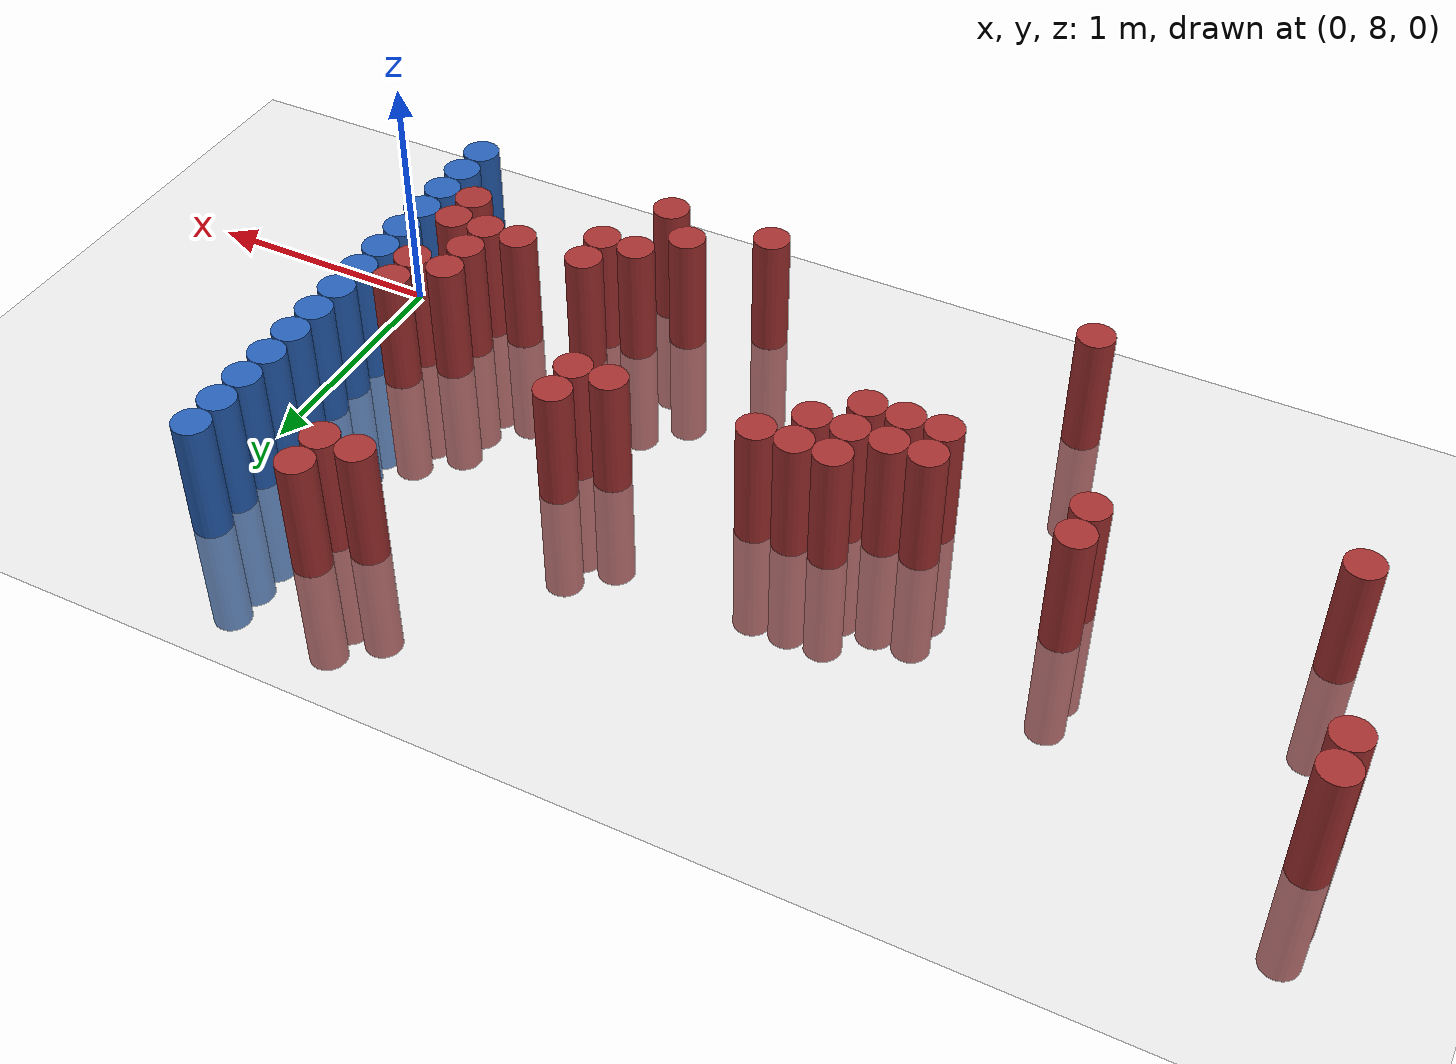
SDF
<sdf version="1.6">
 <world name="default">
  <model name="ground_plane">
   <static>1</static>
   <link name="link">
    <collision name="collision">
     <geometry><plane><normal>0 0 1</normal><size>100 100</size></plane></geometry>
     <surface><friction><ode><mu>100</mu><mu2>50</mu2></ode></friction></surface>
    </collision>
    <visual name="visual">
     <cast_shadows>0</cast_shadows>
     <geometry><plane><normal>0 0 1</normal><size>100 100</size></plane></geometry>
     <material>
      <script><uri>file://media/materials/scripts/gazebo.material</uri><name>Gazebo/Grey</name></script>
     </material>
    </visual>
   </link>
  </model>
  <model name="unit_cylinder_146">
   <static>1</static>
   <pose>-4.125000 9.075000 0.000000 0.000000 0.000000 0.000000</pose>
   <link name="link">
    <inertial>
     <mass>1</mass>
     <inertia><ixx>0.145833</ixx><ixy>0</ixy><ixz>0</ixz><iyy>0.145833</iyy><iyz>0</iyz><izz>0.125</izz></inertia>
    </inertial>
    <collision name="collision">
     <geometry><cylinder><radius>0.075000</radius><length>1</length></cylinder></geometry>
    </collision>
    <visual name="visual">
     <geometry><cylinder><radius>0.075000</radius><length>1</length></cylinder></geometry>
     <material>
      <ambient>0.648000 0.192000 0.192000 1</ambient>
      <diffuse>0.648000 0.192000 0.192000 1</diffuse>
     </material>
     <material>
      <script><name>Gazebo/Grey</name><uri>file://media/materials/scripts/gazebo.material</uri></script>
     </material>
    </visual>
   </link>
  </model>
  <model name="unit_cylinder_147">
   <static>1</static>
   <pose>-4.125000 9.225000 0.000000 0.000000 0.000000 0.000000</pose>
   <link name="link">
    <inertial>
     <mass>1</mass>
     <inertia><ixx>0.145833</ixx><ixy>0</ixy><ixz>0</ixz><iyy>0.145833</iyy><iyz>0</iyz><izz>0.125</izz></inertia>
    </inertial>
    <collision name="collision">
     <geometry><cylinder><radius>0.075000</radius><length>1</length></cylinder></geometry>
    </collision>
    <visual name="visual">
     <geometry><cylinder><radius>0.075000</radius><length>1</length></cylinder></geometry>
     <material>
      <ambient>0.648000 0.192000 0.192000 1</ambient>
      <diffuse>0.648000 0.192000 0.192000 1</diffuse>
     </material>
     <material>
      <script><name>Gazebo/Grey</name><uri>file://media/materials/scripts/gazebo.material</uri></script>
     </material>
    </visual>
   </link>
  </model>
  <model name="unit_cylinder_149">
   <static>1</static>
   <pose>-3.975000 8.325000 0.000000 0.000000 0.000000 0.000000</pose>
   <link name="link">
    <inertial>
     <mass>1</mass>
     <inertia><ixx>0.145833</ixx><ixy>0</ixy><ixz>0</ixz><iyy>0.145833</iyy><iyz>0</iyz><izz>0.125</izz></inertia>
    </inertial>
    <collision name="collision">
     <geometry><cylinder><radius>0.075000</radius><length>1</length></cylinder></geometry>
    </collision>
    <visual name="visual">
     <geometry><cylinder><radius>0.075000</radius><length>1</length></cylinder></geometry>
     <material>
      <ambient>0.648000 0.192000 0.192000 1</ambient>
      <diffuse>0.648000 0.192000 0.192000 1</diffuse>
     </material>
     <material>
      <script><name>Gazebo/Grey</name><uri>file://media/materials/scripts/gazebo.material</uri></script>
     </material>
    </visual>
   </link>
  </model>
  <model name="unit_cylinder_161">
   <static>1</static>
   <pose>-3.075000 8.475000 0.000000 0.000000 0.000000 0.000000</pose>
   <link name="link">
    <inertial>
     <mass>1</mass>
     <inertia><ixx>0.145833</ixx><ixy>0</ixy><ixz>0</ixz><iyy>0.145833</iyy><iyz>0</iyz><izz>0.125</izz></inertia>
    </inertial>
    <collision name="collision">
     <geometry><cylinder><radius>0.075000</radius><length>1</length></cylinder></geometry>
    </collision>
    <visual name="visual">
     <geometry><cylinder><radius>0.075000</radius><length>1</length></cylinder></geometry>
     <material>
      <ambient>0.648000 0.192000 0.192000 1</ambient>
      <diffuse>0.648000 0.192000 0.192000 1</diffuse>
     </material>
     <material>
      <script><name>Gazebo/Grey</name><uri>file://media/materials/scripts/gazebo.material</uri></script>
     </material>
    </visual>
   </link>
  </model>
  <model name="unit_cylinder_162">
   <static>1</static>
   <pose>-3.075000 8.625000 0.000000 0.000000 0.000000 0.000000</pose>
   <link name="link">
    <inertial>
     <mass>1</mass>
     <inertia><ixx>0.145833</ixx><ixy>0</ixy><ixz>0</ixz><iyy>0.145833</iyy><iyz>0</iyz><izz>0.125</izz></inertia>
    </inertial>
    <collision name="collision">
     <geometry><cylinder><radius>0.075000</radius><length>1</length></cylinder></geometry>
    </collision>
    <visual name="visual">
     <geometry><cylinder><radius>0.075000</radius><length>1</length></cylinder></geometry>
     <material>
      <ambient>0.648000 0.192000 0.192000 1</ambient>
      <diffuse>0.648000 0.192000 0.192000 1</diffuse>
     </material>
     <material>
      <script><name>Gazebo/Grey</name><uri>file://media/materials/scripts/gazebo.material</uri></script>
     </material>
    </visual>
   </link>
  </model>
  <model name="unit_cylinder_164">
   <static>1</static>
   <pose>-2.775000 7.575000 0.000000 0.000000 0.000000 0.000000</pose>
   <link name="link">
    <inertial>
     <mass>1</mass>
     <inertia><ixx>0.145833</ixx><ixy>0</ixy><ixz>0</ixz><iyy>0.145833</iyy><iyz>0</iyz><izz>0.125</izz></inertia>
    </inertial>
    <collision name="collision">
     <geometry><cylinder><radius>0.075000</radius><length>1</length></cylinder></geometry>
    </collision>
    <visual name="visual">
     <geometry><cylinder><radius>0.075000</radius><length>1</length></cylinder></geometry>
     <material>
      <ambient>0.648000 0.192000 0.192000 1</ambient>
      <diffuse>0.648000 0.192000 0.192000 1</diffuse>
     </material>
     <material>
      <script><name>Gazebo/Grey</name><uri>file://media/materials/scripts/gazebo.material</uri></script>
     </material>
    </visual>
   </link>
  </model>
  <model name="unit_cylinder_167">
   <static>1</static>
   <pose>-2.475000 8.325000 0.000000 0.000000 0.000000 0.000000</pose>
   <link name="link">
    <inertial>
     <mass>1</mass>
     <inertia><ixx>0.145833</ixx><ixy>0</ixy><ixz>0</ixz><iyy>0.145833</iyy><iyz>0</iyz><izz>0.125</izz></inertia>
    </inertial>
    <collision name="collision">
     <geometry><cylinder><radius>0.075000</radius><length>1</length></cylinder></geometry>
    </collision>
    <visual name="visual">
     <geometry><cylinder><radius>0.075000</radius><length>1</length></cylinder></geometry>
     <material>
      <ambient>0.648000 0.192000 0.192000 1</ambient>
      <diffuse>0.648000 0.192000 0.192000 1</diffuse>
     </material>
     <material>
      <script><name>Gazebo/Grey</name><uri>file://media/materials/scripts/gazebo.material</uri></script>
     </material>
    </visual>
   </link>
  </model>
  <model name="unit_cylinder_168">
   <static>1</static>
   <pose>-2.475000 8.475000 0.000000 0.000000 0.000000 0.000000</pose>
   <link name="link">
    <inertial>
     <mass>1</mass>
     <inertia><ixx>0.145833</ixx><ixy>0</ixy><ixz>0</ixz><iyy>0.145833</iyy><iyz>0</iyz><izz>0.125</izz></inertia>
    </inertial>
    <collision name="collision">
     <geometry><cylinder><radius>0.075000</radius><length>1</length></cylinder></geometry>
    </collision>
    <visual name="visual">
     <geometry><cylinder><radius>0.075000</radius><length>1</length></cylinder></geometry>
     <material>
      <ambient>0.648000 0.192000 0.192000 1</ambient>
      <diffuse>0.648000 0.192000 0.192000 1</diffuse>
     </material>
     <material>
      <script><name>Gazebo/Grey</name><uri>file://media/materials/scripts/gazebo.material</uri></script>
     </material>
    </visual>
   </link>
  </model>
  <model name="unit_cylinder_169">
   <static>1</static>
   <pose>-2.325000 8.325000 0.000000 0.000000 0.000000 0.000000</pose>
   <link name="link">
    <inertial>
     <mass>1</mass>
     <inertia><ixx>0.145833</ixx><ixy>0</ixy><ixz>0</ixz><iyy>0.145833</iyy><iyz>0</iyz><izz>0.125</izz></inertia>
    </inertial>
    <collision name="collision">
     <geometry><cylinder><radius>0.075000</radius><length>1</length></cylinder></geometry>
    </collision>
    <visual name="visual">
     <geometry><cylinder><radius>0.075000</radius><length>1</length></cylinder></geometry>
     <material>
      <ambient>0.648000 0.192000 0.192000 1</ambient>
      <diffuse>0.648000 0.192000 0.192000 1</diffuse>
     </material>
     <material>
      <script><name>Gazebo/Grey</name><uri>file://media/materials/scripts/gazebo.material</uri></script>
     </material>
    </visual>
   </link>
  </model>
  <model name="unit_cylinder_170">
   <static>1</static>
   <pose>-2.325000 8.475000 0.000000 0.000000 0.000000 0.000000</pose>
   <link name="link">
    <inertial>
     <mass>1</mass>
     <inertia><ixx>0.145833</ixx><ixy>0</ixy><ixz>0</ixz><iyy>0.145833</iyy><iyz>0</iyz><izz>0.125</izz></inertia>
    </inertial>
    <collision name="collision">
     <geometry><cylinder><radius>0.075000</radius><length>1</length></cylinder></geometry>
    </collision>
    <visual name="visual">
     <geometry><cylinder><radius>0.075000</radius><length>1</length></cylinder></geometry>
     <material>
      <ambient>0.648000 0.192000 0.192000 1</ambient>
      <diffuse>0.648000 0.192000 0.192000 1</diffuse>
     </material>
     <material>
      <script><name>Gazebo/Grey</name><uri>file://media/materials/scripts/gazebo.material</uri></script>
     </material>
    </visual>
   </link>
  </model>
  <model name="unit_cylinder_171">
   <static>1</static>
   <pose>-2.175000 8.325000 0.000000 0.000000 0.000000 0.000000</pose>
   <link name="link">
    <inertial>
     <mass>1</mass>
     <inertia><ixx>0.145833</ixx><ixy>0</ixy><ixz>0</ixz><iyy>0.145833</iyy><iyz>0</iyz><izz>0.125</izz></inertia>
    </inertial>
    <collision name="collision">
     <geometry><cylinder><radius>0.075000</radius><length>1</length></cylinder></geometry>
    </collision>
    <visual name="visual">
     <geometry><cylinder><radius>0.075000</radius><length>1</length></cylinder></geometry>
     <material>
      <ambient>0.648000 0.192000 0.192000 1</ambient>
      <diffuse>0.648000 0.192000 0.192000 1</diffuse>
     </material>
     <material>
      <script><name>Gazebo/Grey</name><uri>file://media/materials/scripts/gazebo.material</uri></script>
     </material>
    </visual>
   </link>
  </model>
  <model name="unit_cylinder_172">
   <static>1</static>
   <pose>-2.175000 8.475000 0.000000 0.000000 0.000000 0.000000</pose>
   <link name="link">
    <inertial>
     <mass>1</mass>
     <inertia><ixx>0.145833</ixx><ixy>0</ixy><ixz>0</ixz><iyy>0.145833</iyy><iyz>0</iyz><izz>0.125</izz></inertia>
    </inertial>
    <collision name="collision">
     <geometry><cylinder><radius>0.075000</radius><length>1</length></cylinder></geometry>
    </collision>
    <visual name="visual">
     <geometry><cylinder><radius>0.075000</radius><length>1</length></cylinder></geometry>
     <material>
      <ambient>0.648000 0.192000 0.192000 1</ambient>
      <diffuse>0.648000 0.192000 0.192000 1</diffuse>
     </material>
     <material>
      <script><name>Gazebo/Grey</name><uri>file://media/materials/scripts/gazebo.material</uri></script>
     </material>
    </visual>
   </link>
  </model>
  <model name="unit_cylinder_173">
   <static>1</static>
   <pose>-2.175000 8.625000 0.000000 0.000000 0.000000 0.000000</pose>
   <link name="link">
    <inertial>
     <mass>1</mass>
     <inertia><ixx>0.145833</ixx><ixy>0</ixy><ixz>0</ixz><iyy>0.145833</iyy><iyz>0</iyz><izz>0.125</izz></inertia>
    </inertial>
    <collision name="collision">
     <geometry><cylinder><radius>0.075000</radius><length>1</length></cylinder></geometry>
    </collision>
    <visual name="visual">
     <geometry><cylinder><radius>0.075000</radius><length>1</length></cylinder></geometry>
     <material>
      <ambient>0.648000 0.192000 0.192000 1</ambient>
      <diffuse>0.648000 0.192000 0.192000 1</diffuse>
     </material>
     <material>
      <script><name>Gazebo/Grey</name><uri>file://media/materials/scripts/gazebo.material</uri></script>
     </material>
    </visual>
   </link>
  </model>
  <model name="unit_cylinder_176">
   <static>1</static>
   <pose>-2.025000 8.475000 0.000000 0.000000 0.000000 0.000000</pose>
   <link name="link">
    <inertial>
     <mass>1</mass>
     <inertia><ixx>0.145833</ixx><ixy>0</ixy><ixz>0</ixz><iyy>0.145833</iyy><iyz>0</iyz><izz>0.125</izz></inertia>
    </inertial>
    <collision name="collision">
     <geometry><cylinder><radius>0.075000</radius><length>1</length></cylinder></geometry>
    </collision>
    <visual name="visual">
     <geometry><cylinder><radius>0.075000</radius><length>1</length></cylinder></geometry>
     <material>
      <ambient>0.648000 0.192000 0.192000 1</ambient>
      <diffuse>0.648000 0.192000 0.192000 1</diffuse>
     </material>
     <material>
      <script><name>Gazebo/Grey</name><uri>file://media/materials/scripts/gazebo.material</uri></script>
     </material>
    </visual>
   </link>
  </model>
  <model name="unit_cylinder_177">
   <static>1</static>
   <pose>-2.025000 8.625000 0.000000 0.000000 0.000000 0.000000</pose>
   <link name="link">
    <inertial>
     <mass>1</mass>
     <inertia><ixx>0.145833</ixx><ixy>0</ixy><ixz>0</ixz><iyy>0.145833</iyy><iyz>0</iyz><izz>0.125</izz></inertia>
    </inertial>
    <collision name="collision">
     <geometry><cylinder><radius>0.075000</radius><length>1</length></cylinder></geometry>
    </collision>
    <visual name="visual">
     <geometry><cylinder><radius>0.075000</radius><length>1</length></cylinder></geometry>
     <material>
      <ambient>0.648000 0.192000 0.192000 1</ambient>
      <diffuse>0.648000 0.192000 0.192000 1</diffuse>
     </material>
     <material>
      <script><name>Gazebo/Grey</name><uri>file://media/materials/scripts/gazebo.material</uri></script>
     </material>
    </visual>
   </link>
  </model>
  <model name="unit_cylinder_180">
   <static>1</static>
   <pose>-1.875000 8.625000 0.000000 0.000000 0.000000 0.000000</pose>
   <link name="link">
    <inertial>
     <mass>1</mass>
     <inertia><ixx>0.145833</ixx><ixy>0</ixy><ixz>0</ixz><iyy>0.145833</iyy><iyz>0</iyz><izz>0.125</izz></inertia>
    </inertial>
    <collision name="collision">
     <geometry><cylinder><radius>0.075000</radius><length>1</length></cylinder></geometry>
    </collision>
    <visual name="visual">
     <geometry><cylinder><radius>0.075000</radius><length>1</length></cylinder></geometry>
     <material>
      <ambient>0.648000 0.192000 0.192000 1</ambient>
      <diffuse>0.648000 0.192000 0.192000 1</diffuse>
     </material>
     <material>
      <script><name>Gazebo/Grey</name><uri>file://media/materials/scripts/gazebo.material</uri></script>
     </material>
    </visual>
   </link>
  </model>
  <model name="unit_cylinder_186">
   <static>1</static>
   <pose>-1.425000 7.575000 0.000000 0.000000 0.000000 0.000000</pose>
   <link name="link">
    <inertial>
     <mass>1</mass>
     <inertia><ixx>0.145833</ixx><ixy>0</ixy><ixz>0</ixz><iyy>0.145833</iyy><iyz>0</iyz><izz>0.125</izz></inertia>
    </inertial>
    <collision name="collision">
     <geometry><cylinder><radius>0.075000</radius><length>1</length></cylinder></geometry>
    </collision>
    <visual name="visual">
     <geometry><cylinder><radius>0.075000</radius><length>1</length></cylinder></geometry>
     <material>
      <ambient>0.648000 0.192000 0.192000 1</ambient>
      <diffuse>0.648000 0.192000 0.192000 1</diffuse>
     </material>
     <material>
      <script><name>Gazebo/Grey</name><uri>file://media/materials/scripts/gazebo.material</uri></script>
     </material>
    </visual>
   </link>
  </model>
  <model name="unit_cylinder_187">
   <static>1</static>
   <pose>-1.275000 8.625000 0.000000 0.000000 0.000000 0.000000</pose>
   <link name="link">
    <inertial>
     <mass>1</mass>
     <inertia><ixx>0.145833</ixx><ixy>0</ixy><ixz>0</ixz><iyy>0.145833</iyy><iyz>0</iyz><izz>0.125</izz></inertia>
    </inertial>
    <collision name="collision">
     <geometry><cylinder><radius>0.075000</radius><length>1</length></cylinder></geometry>
    </collision>
    <visual name="visual">
     <geometry><cylinder><radius>0.075000</radius><length>1</length></cylinder></geometry>
     <material>
      <ambient>0.648000 0.192000 0.192000 1</ambient>
      <diffuse>0.648000 0.192000 0.192000 1</diffuse>
     </material>
     <material>
      <script><name>Gazebo/Grey</name><uri>file://media/materials/scripts/gazebo.material</uri></script>
     </material>
    </visual>
   </link>
  </model>
  <model name="unit_cylinder_188">
   <static>1</static>
   <pose>-1.125000 7.725000 0.000000 0.000000 0.000000 0.000000</pose>
   <link name="link">
    <inertial>
     <mass>1</mass>
     <inertia><ixx>0.145833</ixx><ixy>0</ixy><ixz>0</ixz><iyy>0.145833</iyy><iyz>0</iyz><izz>0.125</izz></inertia>
    </inertial>
    <collision name="collision">
     <geometry><cylinder><radius>0.075000</radius><length>1</length></cylinder></geometry>
    </collision>
    <visual name="visual">
     <geometry><cylinder><radius>0.075000</radius><length>1</length></cylinder></geometry>
     <material>
      <ambient>0.648000 0.192000 0.192000 1</ambient>
      <diffuse>0.648000 0.192000 0.192000 1</diffuse>
     </material>
     <material>
      <script><name>Gazebo/Grey</name><uri>file://media/materials/scripts/gazebo.material</uri></script>
     </material>
    </visual>
   </link>
  </model>
  <model name="unit_cylinder_189">
   <static>1</static>
   <pose>-1.125000 8.625000 0.000000 0.000000 0.000000 0.000000</pose>
   <link name="link">
    <inertial>
     <mass>1</mass>
     <inertia><ixx>0.145833</ixx><ixy>0</ixy><ixz>0</ixz><iyy>0.145833</iyy><iyz>0</iyz><izz>0.125</izz></inertia>
    </inertial>
    <collision name="collision">
     <geometry><cylinder><radius>0.075000</radius><length>1</length></cylinder></geometry>
    </collision>
    <visual name="visual">
     <geometry><cylinder><radius>0.075000</radius><length>1</length></cylinder></geometry>
     <material>
      <ambient>0.648000 0.192000 0.192000 1</ambient>
      <diffuse>0.648000 0.192000 0.192000 1</diffuse>
     </material>
     <material>
      <script><name>Gazebo/Grey</name><uri>file://media/materials/scripts/gazebo.material</uri></script>
     </material>
    </visual>
   </link>
  </model>
  <model name="unit_cylinder_190">
   <static>1</static>
   <pose>-1.125000 8.775000 0.000000 0.000000 0.000000 0.000000</pose>
   <link name="link">
    <inertial>
     <mass>1</mass>
     <inertia><ixx>0.145833</ixx><ixy>0</ixy><ixz>0</ixz><iyy>0.145833</iyy><iyz>0</iyz><izz>0.125</izz></inertia>
    </inertial>
    <collision name="collision">
     <geometry><cylinder><radius>0.075000</radius><length>1</length></cylinder></geometry>
    </collision>
    <visual name="visual">
     <geometry><cylinder><radius>0.075000</radius><length>1</length></cylinder></geometry>
     <material>
      <ambient>0.648000 0.192000 0.192000 1</ambient>
      <diffuse>0.648000 0.192000 0.192000 1</diffuse>
     </material>
     <material>
      <script><name>Gazebo/Grey</name><uri>file://media/materials/scripts/gazebo.material</uri></script>
     </material>
    </visual>
   </link>
  </model>
  <model name="unit_cylinder_191">
   <static>1</static>
   <pose>-0.975000 7.575000 0.000000 0.000000 0.000000 0.000000</pose>
   <link name="link">
    <inertial>
     <mass>1</mass>
     <inertia><ixx>0.145833</ixx><ixy>0</ixy><ixz>0</ixz><iyy>0.145833</iyy><iyz>0</iyz><izz>0.125</izz></inertia>
    </inertial>
    <collision name="collision">
     <geometry><cylinder><radius>0.075000</radius><length>1</length></cylinder></geometry>
    </collision>
    <visual name="visual">
     <geometry><cylinder><radius>0.075000</radius><length>1</length></cylinder></geometry>
     <material>
      <ambient>0.648000 0.192000 0.192000 1</ambient>
      <diffuse>0.648000 0.192000 0.192000 1</diffuse>
     </material>
     <material>
      <script><name>Gazebo/Grey</name><uri>file://media/materials/scripts/gazebo.material</uri></script>
     </material>
    </visual>
   </link>
  </model>
  <model name="unit_cylinder_192">
   <static>1</static>
   <pose>-0.975000 7.875000 0.000000 0.000000 0.000000 0.000000</pose>
   <link name="link">
    <inertial>
     <mass>1</mass>
     <inertia><ixx>0.145833</ixx><ixy>0</ixy><ixz>0</ixz><iyy>0.145833</iyy><iyz>0</iyz><izz>0.125</izz></inertia>
    </inertial>
    <collision name="collision">
     <geometry><cylinder><radius>0.075000</radius><length>1</length></cylinder></geometry>
    </collision>
    <visual name="visual">
     <geometry><cylinder><radius>0.075000</radius><length>1</length></cylinder></geometry>
     <material>
      <ambient>0.648000 0.192000 0.192000 1</ambient>
      <diffuse>0.648000 0.192000 0.192000 1</diffuse>
     </material>
     <material>
      <script><name>Gazebo/Grey</name><uri>file://media/materials/scripts/gazebo.material</uri></script>
     </material>
    </visual>
   </link>
  </model>
  <model name="unit_cylinder_194">
   <static>1</static>
   <pose>-0.825000 7.875000 0.000000 0.000000 0.000000 0.000000</pose>
   <link name="link">
    <inertial>
     <mass>1</mass>
     <inertia><ixx>0.145833</ixx><ixy>0</ixy><ixz>0</ixz><iyy>0.145833</iyy><iyz>0</iyz><izz>0.125</izz></inertia>
    </inertial>
    <collision name="collision">
     <geometry><cylinder><radius>0.075000</radius><length>1</length></cylinder></geometry>
    </collision>
    <visual name="visual">
     <geometry><cylinder><radius>0.075000</radius><length>1</length></cylinder></geometry>
     <material>
      <ambient>0.648000 0.192000 0.192000 1</ambient>
      <diffuse>0.648000 0.192000 0.192000 1</diffuse>
     </material>
     <material>
      <script><name>Gazebo/Grey</name><uri>file://media/materials/scripts/gazebo.material</uri></script>
     </material>
    </visual>
   </link>
  </model>
  <model name="unit_cylinder_195">
   <static>1</static>
   <pose>-0.825000 8.025000 0.000000 0.000000 0.000000 0.000000</pose>
   <link name="link">
    <inertial>
     <mass>1</mass>
     <inertia><ixx>0.145833</ixx><ixy>0</ixy><ixz>0</ixz><iyy>0.145833</iyy><iyz>0</iyz><izz>0.125</izz></inertia>
    </inertial>
    <collision name="collision">
     <geometry><cylinder><radius>0.075000</radius><length>1</length></cylinder></geometry>
    </collision>
    <visual name="visual">
     <geometry><cylinder><radius>0.075000</radius><length>1</length></cylinder></geometry>
     <material>
      <ambient>0.648000 0.192000 0.192000 1</ambient>
      <diffuse>0.648000 0.192000 0.192000 1</diffuse>
     </material>
     <material>
      <script><name>Gazebo/Grey</name><uri>file://media/materials/scripts/gazebo.material</uri></script>
     </material>
    </visual>
   </link>
  </model>
  <model name="unit_cylinder_196">
   <static>1</static>
   <pose>-0.675000 9.375000 0.000000 0.000000 0.000000 0.000000</pose>
   <link name="link">
    <inertial>
     <mass>1</mass>
     <inertia><ixx>0.145833</ixx><ixy>0</ixy><ixz>0</ixz><iyy>0.145833</iyy><iyz>0</iyz><izz>0.125</izz></inertia>
    </inertial>
    <collision name="collision">
     <geometry><cylinder><radius>0.075000</radius><length>1</length></cylinder></geometry>
    </collision>
    <visual name="visual">
     <geometry><cylinder><radius>0.075000</radius><length>1</length></cylinder></geometry>
     <material>
      <ambient>0.648000 0.192000 0.192000 1</ambient>
      <diffuse>0.648000 0.192000 0.192000 1</diffuse>
     </material>
     <material>
      <script><name>Gazebo/Grey</name><uri>file://media/materials/scripts/gazebo.material</uri></script>
     </material>
    </visual>
   </link>
  </model>
  <model name="unit_cylinder_197">
   <static>1</static>
   <pose>-0.525000 8.025000 0.000000 0.000000 0.000000 0.000000</pose>
   <link name="link">
    <inertial>
     <mass>1</mass>
     <inertia><ixx>0.145833</ixx><ixy>0</ixy><ixz>0</ixz><iyy>0.145833</iyy><iyz>0</iyz><izz>0.125</izz></inertia>
    </inertial>
    <collision name="collision">
     <geometry><cylinder><radius>0.075000</radius><length>1</length></cylinder></geometry>
    </collision>
    <visual name="visual">
     <geometry><cylinder><radius>0.075000</radius><length>1</length></cylinder></geometry>
     <material>
      <ambient>0.648000 0.192000 0.192000 1</ambient>
      <diffuse>0.648000 0.192000 0.192000 1</diffuse>
     </material>
     <material>
      <script><name>Gazebo/Grey</name><uri>file://media/materials/scripts/gazebo.material</uri></script>
     </material>
    </visual>
   </link>
  </model>
  <model name="unit_cylinder_198">
   <static>1</static>
   <pose>-0.525000 9.375000 0.000000 0.000000 0.000000 0.000000</pose>
   <link name="link">
    <inertial>
     <mass>1</mass>
     <inertia><ixx>0.145833</ixx><ixy>0</ixy><ixz>0</ixz><iyy>0.145833</iyy><iyz>0</iyz><izz>0.125</izz></inertia>
    </inertial>
    <collision name="collision">
     <geometry><cylinder><radius>0.075000</radius><length>1</length></cylinder></geometry>
    </collision>
    <visual name="visual">
     <geometry><cylinder><radius>0.075000</radius><length>1</length></cylinder></geometry>
     <material>
      <ambient>0.648000 0.192000 0.192000 1</ambient>
      <diffuse>0.648000 0.192000 0.192000 1</diffuse>
     </material>
     <material>
      <script><name>Gazebo/Grey</name><uri>file://media/materials/scripts/gazebo.material</uri></script>
     </material>
    </visual>
   </link>
  </model>
  <model name="unit_cylinder_199">
   <static>1</static>
   <pose>-0.525000 9.525000 0.000000 0.000000 0.000000 0.000000</pose>
   <link name="link">
    <inertial>
     <mass>1</mass>
     <inertia><ixx>0.145833</ixx><ixy>0</ixy><ixz>0</ixz><iyy>0.145833</iyy><iyz>0</iyz><izz>0.125</izz></inertia>
    </inertial>
    <collision name="collision">
     <geometry><cylinder><radius>0.075000</radius><length>1</length></cylinder></geometry>
    </collision>
    <visual name="visual">
     <geometry><cylinder><radius>0.075000</radius><length>1</length></cylinder></geometry>
     <material>
      <ambient>0.648000 0.192000 0.192000 1</ambient>
      <diffuse>0.648000 0.192000 0.192000 1</diffuse>
     </material>
     <material>
      <script><name>Gazebo/Grey</name><uri>file://media/materials/scripts/gazebo.material</uri></script>
     </material>
    </visual>
   </link>
  </model>
  <model name="unit_cylinder_201">
   <static>1</static>
   <pose>-0.375000 8.025000 0.000000 0.000000 0.000000 0.000000</pose>
   <link name="link">
    <inertial>
     <mass>1</mass>
     <inertia><ixx>0.145833</ixx><ixy>0</ixy><ixz>0</ixz><iyy>0.145833</iyy><iyz>0</iyz><izz>0.125</izz></inertia>
    </inertial>
    <collision name="collision">
     <geometry><cylinder><radius>0.075000</radius><length>1</length></cylinder></geometry>
    </collision>
    <visual name="visual">
     <geometry><cylinder><radius>0.075000</radius><length>1</length></cylinder></geometry>
     <material>
      <ambient>0.648000 0.192000 0.192000 1</ambient>
      <diffuse>0.648000 0.192000 0.192000 1</diffuse>
     </material>
     <material>
      <script><name>Gazebo/Grey</name><uri>file://media/materials/scripts/gazebo.material</uri></script>
     </material>
    </visual>
   </link>
  </model>
  <model name="unit_cylinder_202">
   <static>1</static>
   <pose>-0.375000 8.175000 0.000000 0.000000 0.000000 0.000000</pose>
   <link name="link">
    <inertial>
     <mass>1</mass>
     <inertia><ixx>0.145833</ixx><ixy>0</ixy><ixz>0</ixz><iyy>0.145833</iyy><iyz>0</iyz><izz>0.125</izz></inertia>
    </inertial>
    <collision name="collision">
     <geometry><cylinder><radius>0.075000</radius><length>1</length></cylinder></geometry>
    </collision>
    <visual name="visual">
     <geometry><cylinder><radius>0.075000</radius><length>1</length></cylinder></geometry>
     <material>
      <ambient>0.648000 0.192000 0.192000 1</ambient>
      <diffuse>0.648000 0.192000 0.192000 1</diffuse>
     </material>
     <material>
      <script><name>Gazebo/Grey</name><uri>file://media/materials/scripts/gazebo.material</uri></script>
     </material>
    </visual>
   </link>
  </model>
  <model name="unit_cylinder_203">
   <static>1</static>
   <pose>-0.375000 8.325000 0.000000 0.000000 0.000000 0.000000</pose>
   <link name="link">
    <inertial>
     <mass>1</mass>
     <inertia><ixx>0.145833</ixx><ixy>0</ixy><ixz>0</ixz><iyy>0.145833</iyy><iyz>0</iyz><izz>0.125</izz></inertia>
    </inertial>
    <collision name="collision">
     <geometry><cylinder><radius>0.075000</radius><length>1</length></cylinder></geometry>
    </collision>
    <visual name="visual">
     <geometry><cylinder><radius>0.075000</radius><length>1</length></cylinder></geometry>
     <material>
      <ambient>0.648000 0.192000 0.192000 1</ambient>
      <diffuse>0.648000 0.192000 0.192000 1</diffuse>
     </material>
     <material>
      <script><name>Gazebo/Grey</name><uri>file://media/materials/scripts/gazebo.material</uri></script>
     </material>
    </visual>
   </link>
  </model>
  <model name="unit_cylinder_212">
   <static>1</static>
   <pose>-0.225000 7.875000 0.000000 0.000000 0.000000 0.000000</pose>
   <link name="link">
    <inertial>
     <mass>1</mass>
     <inertia><ixx>0.145833</ixx><ixy>0</ixy><ixz>0</ixz><iyy>0.145833</iyy><iyz>0</iyz><izz>0.125</izz></inertia>
    </inertial>
    <collision name="collision">
     <geometry><cylinder><radius>0.075000</radius><length>1</length></cylinder></geometry>
    </collision>
    <visual name="visual">
     <geometry><cylinder><radius>0.075000</radius><length>1</length></cylinder></geometry>
     <material>
      <ambient>0.648000 0.192000 0.192000 1</ambient>
      <diffuse>0.648000 0.192000 0.192000 1</diffuse>
     </material>
     <material>
      <script><name>Gazebo/Grey</name><uri>file://media/materials/scripts/gazebo.material</uri></script>
     </material>
    </visual>
   </link>
  </model>
  <model name="unit_cylinder_213">
   <static>1</static>
   <pose>-0.225000 8.025000 0.000000 0.000000 0.000000 0.000000</pose>
   <link name="link">
    <inertial>
     <mass>1</mass>
     <inertia><ixx>0.145833</ixx><ixy>0</ixy><ixz>0</ixz><iyy>0.145833</iyy><iyz>0</iyz><izz>0.125</izz></inertia>
    </inertial>
    <collision name="collision">
     <geometry><cylinder><radius>0.075000</radius><length>1</length></cylinder></geometry>
    </collision>
    <visual name="visual">
     <geometry><cylinder><radius>0.075000</radius><length>1</length></cylinder></geometry>
     <material>
      <ambient>0.648000 0.192000 0.192000 1</ambient>
      <diffuse>0.648000 0.192000 0.192000 1</diffuse>
     </material>
     <material>
      <script><name>Gazebo/Grey</name><uri>file://media/materials/scripts/gazebo.material</uri></script>
     </material>
    </visual>
   </link>
  </model>
  <model name="unit_cylinder_214">
   <static>1</static>
   <pose>-0.225000 8.325000 0.000000 0.000000 0.000000 0.000000</pose>
   <link name="link">
    <inertial>
     <mass>1</mass>
     <inertia><ixx>0.145833</ixx><ixy>0</ixy><ixz>0</ixz><iyy>0.145833</iyy><iyz>0</iyz><izz>0.125</izz></inertia>
    </inertial>
    <collision name="collision">
     <geometry><cylinder><radius>0.075000</radius><length>1</length></cylinder></geometry>
    </collision>
    <visual name="visual">
     <geometry><cylinder><radius>0.075000</radius><length>1</length></cylinder></geometry>
     <material>
      <ambient>0.648000 0.192000 0.192000 1</ambient>
      <diffuse>0.648000 0.192000 0.192000 1</diffuse>
     </material>
     <material>
      <script><name>Gazebo/Grey</name><uri>file://media/materials/scripts/gazebo.material</uri></script>
     </material>
    </visual>
   </link>
  </model>
  <model name="unit_cylinder_215">
   <static>1</static>
   <pose>-0.225000 8.475000 0.000000 0.000000 0.000000 0.000000</pose>
   <link name="link">
    <inertial>
     <mass>1</mass>
     <inertia><ixx>0.145833</ixx><ixy>0</ixy><ixz>0</ixz><iyy>0.145833</iyy><iyz>0</iyz><izz>0.125</izz></inertia>
    </inertial>
    <collision name="collision">
     <geometry><cylinder><radius>0.075000</radius><length>1</length></cylinder></geometry>
    </collision>
    <visual name="visual">
     <geometry><cylinder><radius>0.075000</radius><length>1</length></cylinder></geometry>
     <material>
      <ambient>0.648000 0.192000 0.192000 1</ambient>
      <diffuse>0.648000 0.192000 0.192000 1</diffuse>
     </material>
     <material>
      <script><name>Gazebo/Grey</name><uri>file://media/materials/scripts/gazebo.material</uri></script>
     </material>
    </visual>
   </link>
  </model>
  <model name="unit_cylinder_232">
   <static>1</static>
   <pose>-0.075000 7.575000 0.000000 0.000000 0.000000 0.000000</pose>
   <link name="link">
    <inertial>
     <mass>1</mass>
     <inertia><ixx>0.145833</ixx><ixy>0</ixy><ixz>0</ixz><iyy>0.145833</iyy><iyz>0</iyz><izz>0.125</izz></inertia>
    </inertial>
    <collision name="collision">
     <geometry><cylinder><radius>0.075000</radius><length>1</length></cylinder></geometry>
    </collision>
    <visual name="visual">
     <geometry><cylinder><radius>0.075000</radius><length>1</length></cylinder></geometry>
     <material>
      <ambient>0.152000 0.379000 0.720000 1</ambient>
      <diffuse>0.152000 0.379000 0.720000 1</diffuse>
     </material>
     <material>
      <script><name>Gazebo/Grey</name><uri>file://media/materials/scripts/gazebo.material</uri></script>
     </material>
    </visual>
   </link>
  </model>
  <model name="unit_cylinder_233">
   <static>1</static>
   <pose>-0.075000 7.725000 0.000000 0.000000 0.000000 0.000000</pose>
   <link name="link">
    <inertial>
     <mass>1</mass>
     <inertia><ixx>0.145833</ixx><ixy>0</ixy><ixz>0</ixz><iyy>0.145833</iyy><iyz>0</iyz><izz>0.125</izz></inertia>
    </inertial>
    <collision name="collision">
     <geometry><cylinder><radius>0.075000</radius><length>1</length></cylinder></geometry>
    </collision>
    <visual name="visual">
     <geometry><cylinder><radius>0.075000</radius><length>1</length></cylinder></geometry>
     <material>
      <ambient>0.152000 0.379000 0.720000 1</ambient>
      <diffuse>0.152000 0.379000 0.720000 1</diffuse>
     </material>
     <material>
      <script><name>Gazebo/Grey</name><uri>file://media/materials/scripts/gazebo.material</uri></script>
     </material>
    </visual>
   </link>
  </model>
  <model name="unit_cylinder_234">
   <static>1</static>
   <pose>-0.075000 7.875000 0.000000 0.000000 0.000000 0.000000</pose>
   <link name="link">
    <inertial>
     <mass>1</mass>
     <inertia><ixx>0.145833</ixx><ixy>0</ixy><ixz>0</ixz><iyy>0.145833</iyy><iyz>0</iyz><izz>0.125</izz></inertia>
    </inertial>
    <collision name="collision">
     <geometry><cylinder><radius>0.075000</radius><length>1</length></cylinder></geometry>
    </collision>
    <visual name="visual">
     <geometry><cylinder><radius>0.075000</radius><length>1</length></cylinder></geometry>
     <material>
      <ambient>0.152000 0.379000 0.720000 1</ambient>
      <diffuse>0.152000 0.379000 0.720000 1</diffuse>
     </material>
     <material>
      <script><name>Gazebo/Grey</name><uri>file://media/materials/scripts/gazebo.material</uri></script>
     </material>
    </visual>
   </link>
  </model>
  <model name="unit_cylinder_235">
   <static>1</static>
   <pose>-0.075000 8.025000 0.000000 0.000000 0.000000 0.000000</pose>
   <link name="link">
    <inertial>
     <mass>1</mass>
     <inertia><ixx>0.145833</ixx><ixy>0</ixy><ixz>0</ixz><iyy>0.145833</iyy><iyz>0</iyz><izz>0.125</izz></inertia>
    </inertial>
    <collision name="collision">
     <geometry><cylinder><radius>0.075000</radius><length>1</length></cylinder></geometry>
    </collision>
    <visual name="visual">
     <geometry><cylinder><radius>0.075000</radius><length>1</length></cylinder></geometry>
     <material>
      <ambient>0.152000 0.379000 0.720000 1</ambient>
      <diffuse>0.152000 0.379000 0.720000 1</diffuse>
     </material>
     <material>
      <script><name>Gazebo/Grey</name><uri>file://media/materials/scripts/gazebo.material</uri></script>
     </material>
    </visual>
   </link>
  </model>
  <model name="unit_cylinder_236">
   <static>1</static>
   <pose>-0.075000 8.175000 0.000000 0.000000 0.000000 0.000000</pose>
   <link name="link">
    <inertial>
     <mass>1</mass>
     <inertia><ixx>0.145833</ixx><ixy>0</ixy><ixz>0</ixz><iyy>0.145833</iyy><iyz>0</iyz><izz>0.125</izz></inertia>
    </inertial>
    <collision name="collision">
     <geometry><cylinder><radius>0.075000</radius><length>1</length></cylinder></geometry>
    </collision>
    <visual name="visual">
     <geometry><cylinder><radius>0.075000</radius><length>1</length></cylinder></geometry>
     <material>
      <ambient>0.152000 0.379000 0.720000 1</ambient>
      <diffuse>0.152000 0.379000 0.720000 1</diffuse>
     </material>
     <material>
      <script><name>Gazebo/Grey</name><uri>file://media/materials/scripts/gazebo.material</uri></script>
     </material>
    </visual>
   </link>
  </model>
  <model name="unit_cylinder_237">
   <static>1</static>
   <pose>-0.075000 8.325000 0.000000 0.000000 0.000000 0.000000</pose>
   <link name="link">
    <inertial>
     <mass>1</mass>
     <inertia><ixx>0.145833</ixx><ixy>0</ixy><ixz>0</ixz><iyy>0.145833</iyy><iyz>0</iyz><izz>0.125</izz></inertia>
    </inertial>
    <collision name="collision">
     <geometry><cylinder><radius>0.075000</radius><length>1</length></cylinder></geometry>
    </collision>
    <visual name="visual">
     <geometry><cylinder><radius>0.075000</radius><length>1</length></cylinder></geometry>
     <material>
      <ambient>0.152000 0.379000 0.720000 1</ambient>
      <diffuse>0.152000 0.379000 0.720000 1</diffuse>
     </material>
     <material>
      <script><name>Gazebo/Grey</name><uri>file://media/materials/scripts/gazebo.material</uri></script>
     </material>
    </visual>
   </link>
  </model>
  <model name="unit_cylinder_238">
   <static>1</static>
   <pose>-0.075000 8.475000 0.000000 0.000000 0.000000 0.000000</pose>
   <link name="link">
    <inertial>
     <mass>1</mass>
     <inertia><ixx>0.145833</ixx><ixy>0</ixy><ixz>0</ixz><iyy>0.145833</iyy><iyz>0</iyz><izz>0.125</izz></inertia>
    </inertial>
    <collision name="collision">
     <geometry><cylinder><radius>0.075000</radius><length>1</length></cylinder></geometry>
    </collision>
    <visual name="visual">
     <geometry><cylinder><radius>0.075000</radius><length>1</length></cylinder></geometry>
     <material>
      <ambient>0.152000 0.379000 0.720000 1</ambient>
      <diffuse>0.152000 0.379000 0.720000 1</diffuse>
     </material>
     <material>
      <script><name>Gazebo/Grey</name><uri>file://media/materials/scripts/gazebo.material</uri></script>
     </material>
    </visual>
   </link>
  </model>
  <model name="unit_cylinder_239">
   <static>1</static>
   <pose>-0.075000 8.625000 0.000000 0.000000 0.000000 0.000000</pose>
   <link name="link">
    <inertial>
     <mass>1</mass>
     <inertia><ixx>0.145833</ixx><ixy>0</ixy><ixz>0</ixz><iyy>0.145833</iyy><iyz>0</iyz><izz>0.125</izz></inertia>
    </inertial>
    <collision name="collision">
     <geometry><cylinder><radius>0.075000</radius><length>1</length></cylinder></geometry>
    </collision>
    <visual name="visual">
     <geometry><cylinder><radius>0.075000</radius><length>1</length></cylinder></geometry>
     <material>
      <ambient>0.152000 0.379000 0.720000 1</ambient>
      <diffuse>0.152000 0.379000 0.720000 1</diffuse>
     </material>
     <material>
      <script><name>Gazebo/Grey</name><uri>file://media/materials/scripts/gazebo.material</uri></script>
     </material>
    </visual>
   </link>
  </model>
  <model name="unit_cylinder_240">
   <static>1</static>
   <pose>-0.075000 8.775000 0.000000 0.000000 0.000000 0.000000</pose>
   <link name="link">
    <inertial>
     <mass>1</mass>
     <inertia><ixx>0.145833</ixx><ixy>0</ixy><ixz>0</ixz><iyy>0.145833</iyy><iyz>0</iyz><izz>0.125</izz></inertia>
    </inertial>
    <collision name="collision">
     <geometry><cylinder><radius>0.075000</radius><length>1</length></cylinder></geometry>
    </collision>
    <visual name="visual">
     <geometry><cylinder><radius>0.075000</radius><length>1</length></cylinder></geometry>
     <material>
      <ambient>0.152000 0.379000 0.720000 1</ambient>
      <diffuse>0.152000 0.379000 0.720000 1</diffuse>
     </material>
     <material>
      <script><name>Gazebo/Grey</name><uri>file://media/materials/scripts/gazebo.material</uri></script>
     </material>
    </visual>
   </link>
  </model>
  <model name="unit_cylinder_241">
   <static>1</static>
   <pose>-0.075000 8.925000 0.000000 0.000000 0.000000 0.000000</pose>
   <link name="link">
    <inertial>
     <mass>1</mass>
     <inertia><ixx>0.145833</ixx><ixy>0</ixy><ixz>0</ixz><iyy>0.145833</iyy><iyz>0</iyz><izz>0.125</izz></inertia>
    </inertial>
    <collision name="collision">
     <geometry><cylinder><radius>0.075000</radius><length>1</length></cylinder></geometry>
    </collision>
    <visual name="visual">
     <geometry><cylinder><radius>0.075000</radius><length>1</length></cylinder></geometry>
     <material>
      <ambient>0.152000 0.379000 0.720000 1</ambient>
      <diffuse>0.152000 0.379000 0.720000 1</diffuse>
     </material>
     <material>
      <script><name>Gazebo/Grey</name><uri>file://media/materials/scripts/gazebo.material</uri></script>
     </material>
    </visual>
   </link>
  </model>
  <model name="unit_cylinder_242">
   <static>1</static>
   <pose>-0.075000 9.075000 0.000000 0.000000 0.000000 0.000000</pose>
   <link name="link">
    <inertial>
     <mass>1</mass>
     <inertia><ixx>0.145833</ixx><ixy>0</ixy><ixz>0</ixz><iyy>0.145833</iyy><iyz>0</iyz><izz>0.125</izz></inertia>
    </inertial>
    <collision name="collision">
     <geometry><cylinder><radius>0.075000</radius><length>1</length></cylinder></geometry>
    </collision>
    <visual name="visual">
     <geometry><cylinder><radius>0.075000</radius><length>1</length></cylinder></geometry>
     <material>
      <ambient>0.152000 0.379000 0.720000 1</ambient>
      <diffuse>0.152000 0.379000 0.720000 1</diffuse>
     </material>
     <material>
      <script><name>Gazebo/Grey</name><uri>file://media/materials/scripts/gazebo.material</uri></script>
     </material>
    </visual>
   </link>
  </model>
  <model name="unit_cylinder_243">
   <static>1</static>
   <pose>-0.075000 9.225000 0.000000 0.000000 0.000000 0.000000</pose>
   <link name="link">
    <inertial>
     <mass>1</mass>
     <inertia><ixx>0.145833</ixx><ixy>0</ixy><ixz>0</ixz><iyy>0.145833</iyy><iyz>0</iyz><izz>0.125</izz></inertia>
    </inertial>
    <collision name="collision">
     <geometry><cylinder><radius>0.075000</radius><length>1</length></cylinder></geometry>
    </collision>
    <visual name="visual">
     <geometry><cylinder><radius>0.075000</radius><length>1</length></cylinder></geometry>
     <material>
      <ambient>0.152000 0.379000 0.720000 1</ambient>
      <diffuse>0.152000 0.379000 0.720000 1</diffuse>
     </material>
     <material>
      <script><name>Gazebo/Grey</name><uri>file://media/materials/scripts/gazebo.material</uri></script>
     </material>
    </visual>
   </link>
  </model>
  <model name="unit_cylinder_244">
   <static>1</static>
   <pose>-0.075000 9.375000 0.000000 0.000000 0.000000 0.000000</pose>
   <link name="link">
    <inertial>
     <mass>1</mass>
     <inertia><ixx>0.145833</ixx><ixy>0</ixy><ixz>0</ixz><iyy>0.145833</iyy><iyz>0</iyz><izz>0.125</izz></inertia>
    </inertial>
    <collision name="collision">
     <geometry><cylinder><radius>0.075000</radius><length>1</length></cylinder></geometry>
    </collision>
    <visual name="visual">
     <geometry><cylinder><radius>0.075000</radius><length>1</length></cylinder></geometry>
     <material>
      <ambient>0.152000 0.379000 0.720000 1</ambient>
      <diffuse>0.152000 0.379000 0.720000 1</diffuse>
     </material>
     <material>
      <script><name>Gazebo/Grey</name><uri>file://media/materials/scripts/gazebo.material</uri></script>
     </material>
    </visual>
   </link>
  </model>
  <model name="unit_cylinder_245">
   <static>1</static>
   <pose>-0.075000 9.525000 0.000000 0.000000 0.000000 0.000000</pose>
   <link name="link">
    <inertial>
     <mass>1</mass>
     <inertia><ixx>0.145833</ixx><ixy>0</ixy><ixz>0</ixz><iyy>0.145833</iyy><iyz>0</iyz><izz>0.125</izz></inertia>
    </inertial>
    <collision name="collision">
     <geometry><cylinder><radius>0.075000</radius><length>1</length></cylinder></geometry>
    </collision>
    <visual name="visual">
     <geometry><cylinder><radius>0.075000</radius><length>1</length></cylinder></geometry>
     <material>
      <ambient>0.152000 0.379000 0.720000 1</ambient>
      <diffuse>0.152000 0.379000 0.720000 1</diffuse>
     </material>
     <material>
      <script><name>Gazebo/Grey</name><uri>file://media/materials/scripts/gazebo.material</uri></script>
     </material>
    </visual>
   </link>
  </model>
 </world>
</sdf>
